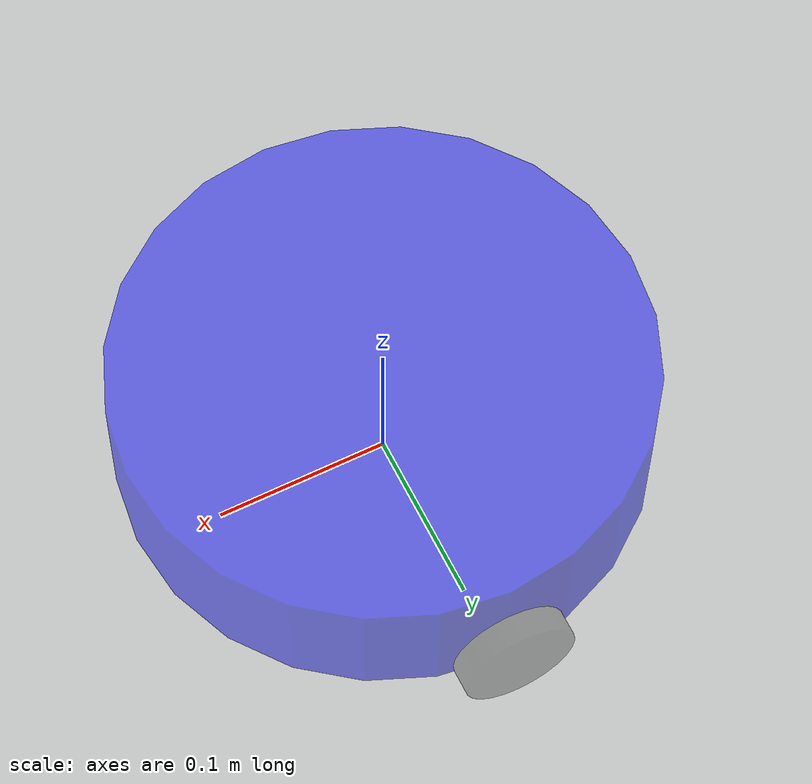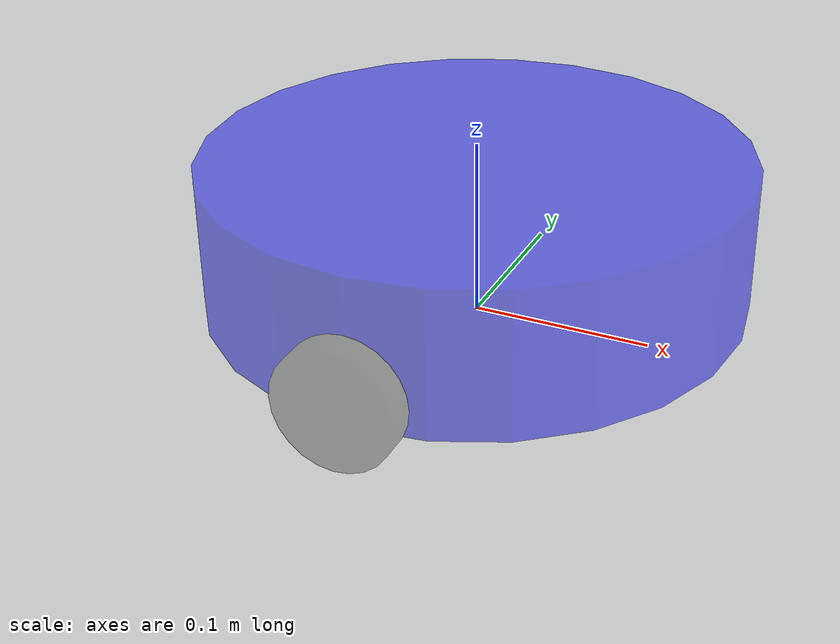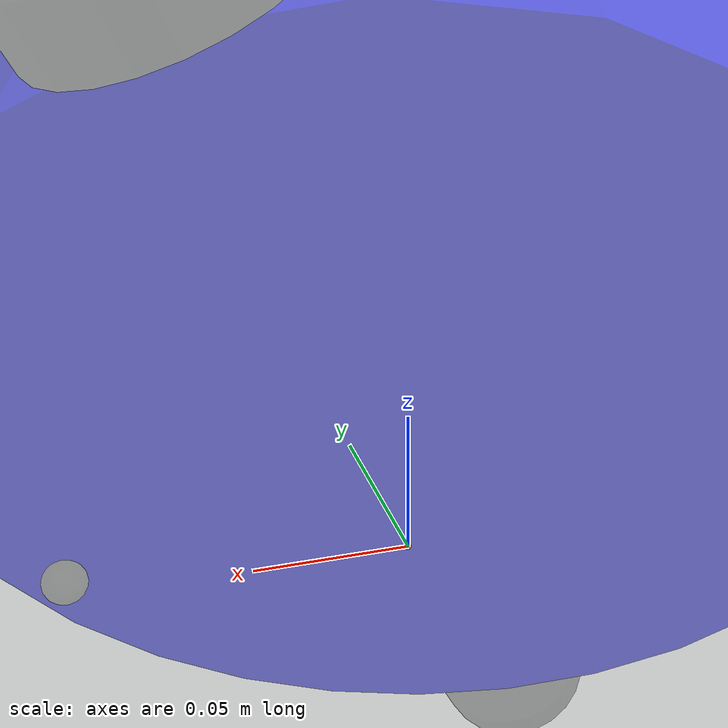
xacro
<robot name="base" xmlns:xacro="http://www.ros.org/wiki/xacro">

    <xacro:property name="footprint_radius" value="0.001" />

    <xacro:property name="base_radius" value="0.15" />
    <xacro:property name="base_length" value="0.08" />
    <xacro:property name="base_mass" value="2" />
    <xacro:property name="lidi" value="${base_length / 2 + 0.015}" />

    <xacro:property name="wheel_radius" value="0.0325" />
    <xacro:property name="wheel_length" value="0.015" />
    <xacro:property name="wheel_mass" value="0.05" />
    <xacro:property name="PI" value="3.1415926" />
    <xacro:property name="wheel_joint_z" value="${-lidi + wheel_radius}" />

    <xacro:property name="wxwheel_radius" value="0.0075" />
    <xacro:property name="wxwheel_mass" value="0.01" />
    <xacro:property name="wxwheel_joint_z" value="${-(lidi - wxwheel_radius)}" />

    <link name="base_footprint">
        <visual>
            <geometry>
                <sphere radius="${footprint_radius}" />
            </geometry>
        </visual>
    </link>

    <!-- 底盘 -->
    <link name="base_link">
        <visual>
            <geometry>
                <cylinder radius="${base_radius}" length="${base_length}" />
            </geometry>
            <origin xyz="0 0 0" rpy="0 0 0" />
            <material name="base_link_color">
                <color rgba="0 0 1.0 0.5" />
            </material>
        </visual>

        <collision>
            <geometry>
                <cylinder radius="${base_radius}" length="${base_length}" />
            </geometry>
            <origin xyz="0 0 0" rpy="0 0 0" />

        </collision>

        <xacro:cylinder_inertial_matrix m="${base_mass}" r="${base_radius}" h="${base_length}" />

    </link>

    <gazebo reference="base_link">
        <material>Gazebo/Yellow</material>
    </gazebo>

    <joint name="link2foorprint" type="fixed">
        <parent link="base_footprint" />
        <child link="base_link" />
        <origin xyz="0 0 ${lidi}" rpy="0 0 0" />
    </joint>

    <!-- 左/右旋转轮 -->

    <xacro:macro name="wheel_func" params="wheel_name flag">
        <link name="${wheel_name}_wheel">
            <visual>
                <geometry>
                    <cylinder radius="${wheel_radius}" length="${wheel_length}" />
                </geometry>

                <origin xyz="0 0 0" rpy="${PI / 2} 0 0" />

                <material name="black">
                    <color rgba="0 0 0 0.3" />
                </material>
            </visual>

            <collision>
                <geometry>
                    <cylinder radius="${wheel_radius}" length="${wheel_length}" />
                </geometry>

                <origin xyz="0 0 0" rpy="${PI / 2} 0 0" />
            </collision>

            <xacro:cylinder_inertial_matrix m="${wheel_mass}" r="${wheel_radius}" h="${wheel_length}" />

        </link>

        <gazebo reference="${wheel_name}_wheel">
            <material>Gazebo/Red</material>
        </gazebo>

        <joint name="${wheel_name}2link" type="continuous">
            <parent link="base_link" />
            <child link="${wheel_name}_wheel" />
            <origin xyz="0 ${(base_radius + wheel_length / 2) * flag} ${wheel_joint_z}" rpy="0 0 0" />
            <axis xyz="0 1 0" />
        </joint>
    </xacro:macro>

    <!-- 万向轮 -->
    <xacro:macro name="wxwheel" params="wheel_name flag">
        <link name="${wheel_name}_wheel">
            <visual>
                <geometry>
                    <sphere radius="${wxwheel_radius}" />
                </geometry>

                <origin xyz="0 0 0" rpy="0 0 0" />
                <material name="wheel_color">
                    <color rgba="0 0 0 0.3" />
                </material>
            </visual>

            <collision>
                <geometry>
                    <sphere radius="${wxwheel_radius}" />
                </geometry>

                <origin xyz="0 0 0" rpy="0 0 0" />
            </collision>

            <xacro:sphere_inertial_matrix m="${wxwheel_mass}" r="${wxwheel_radius}" />
        </link>

        <gazebo reference="${wheel_name}_wheel">
            <material>Gazebo/Red</material>
        </gazebo>

        <joint name="${wheel_name}2link" type="continuous">
            <parent link="base_link" />
            <child link="${wheel_name}_wheel" />
            <origin xyz="${base_radius * flag * 0.8} 0 ${wxwheel_joint_z}" rpy="0 0 0" />
            <axis xyz="0 1 0" />
        </joint>
    </xacro:macro>

    <xacro:wheel_func wheel_name="left" flag="1" />
    <xacro:wheel_func wheel_name="right" flag="-1" />

    <xacro:wxwheel wheel_name="front" flag="1" />
    <xacro:wxwheel wheel_name="back" flag="-1" />
</robot>
